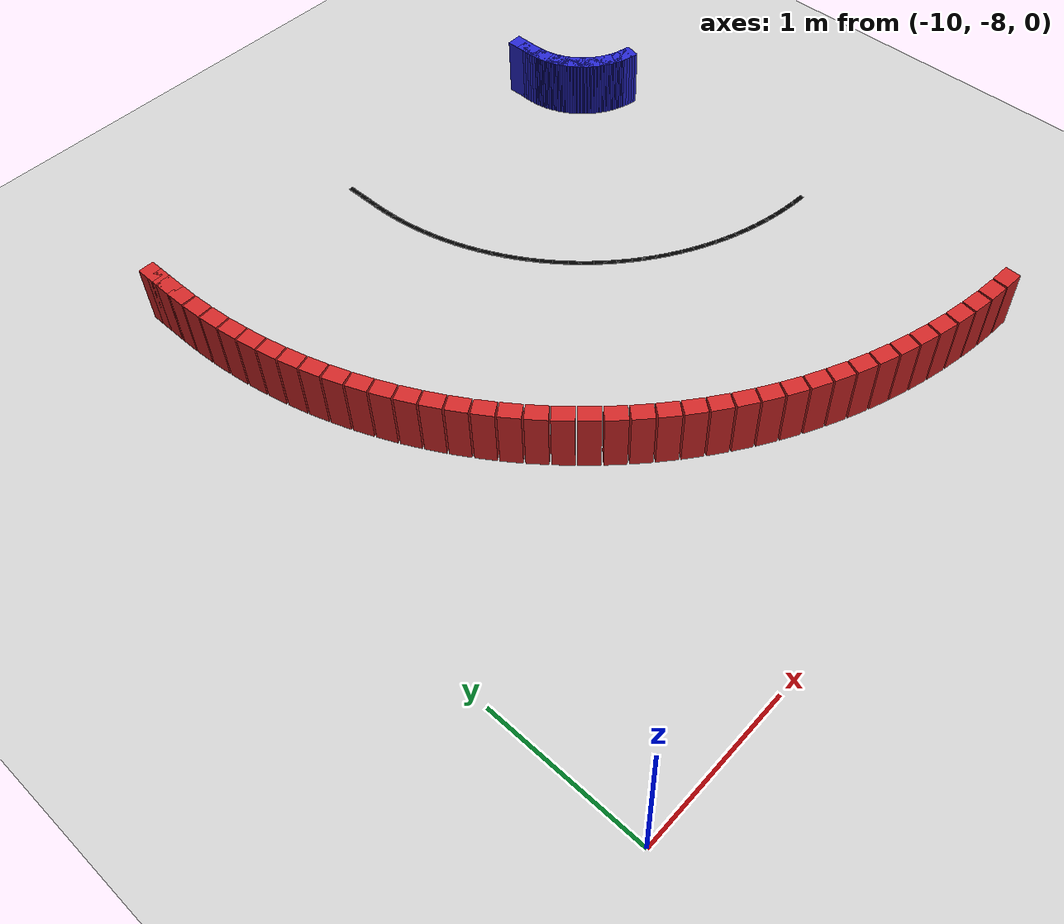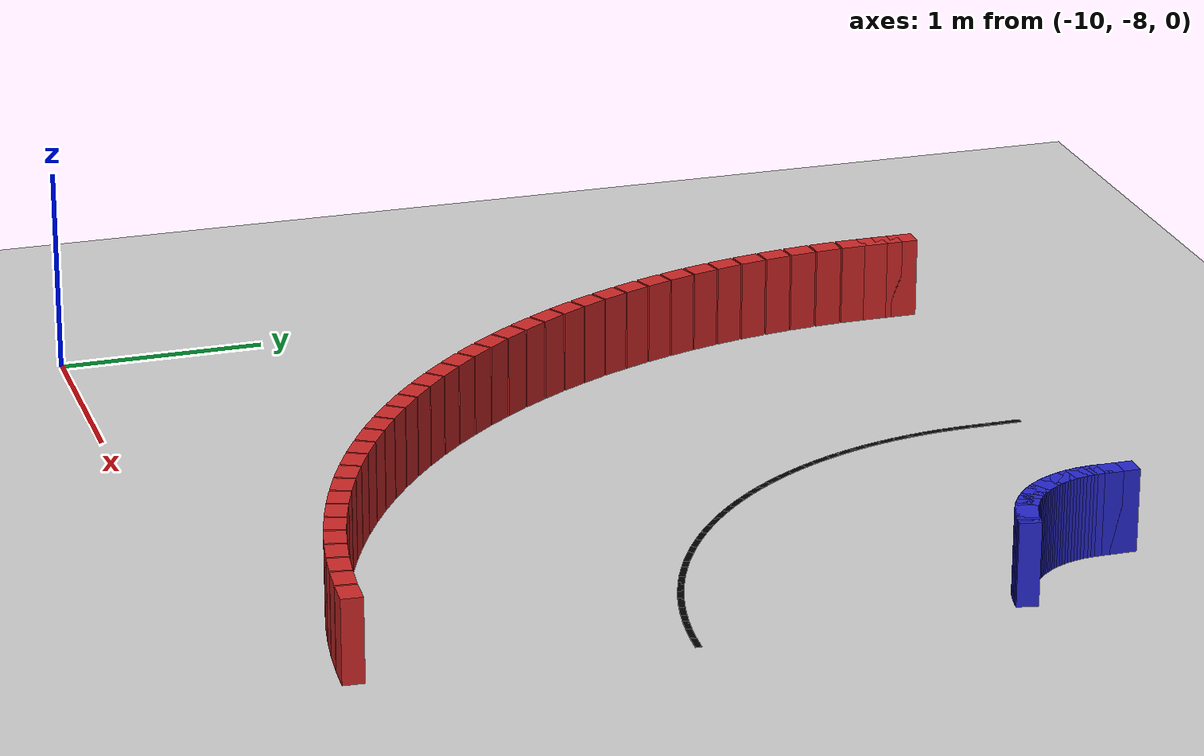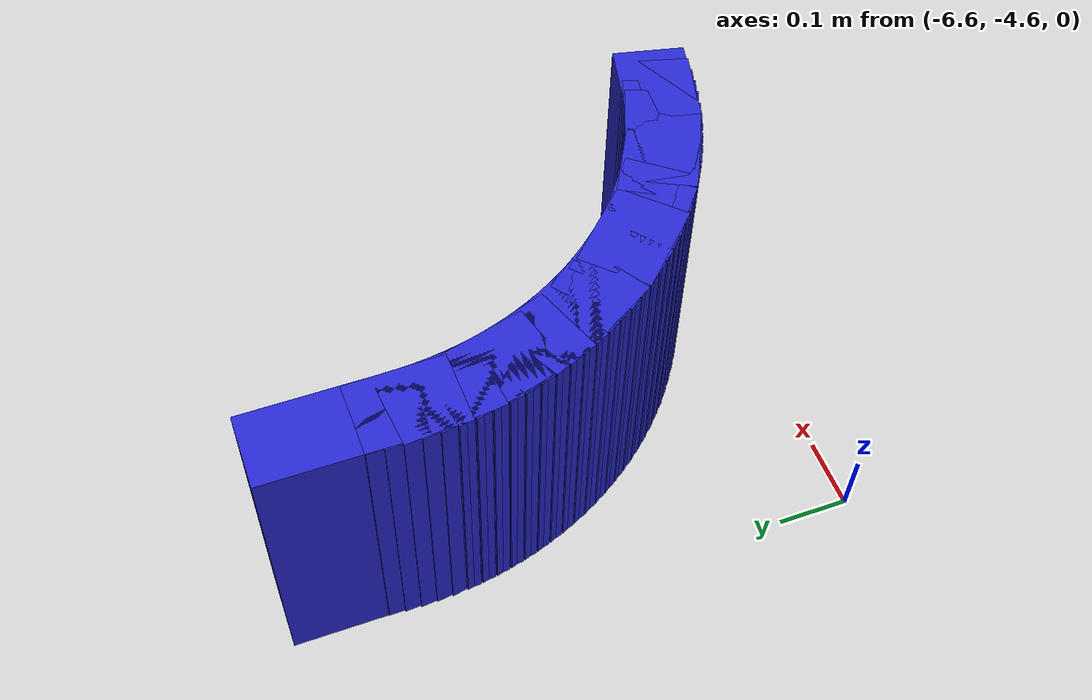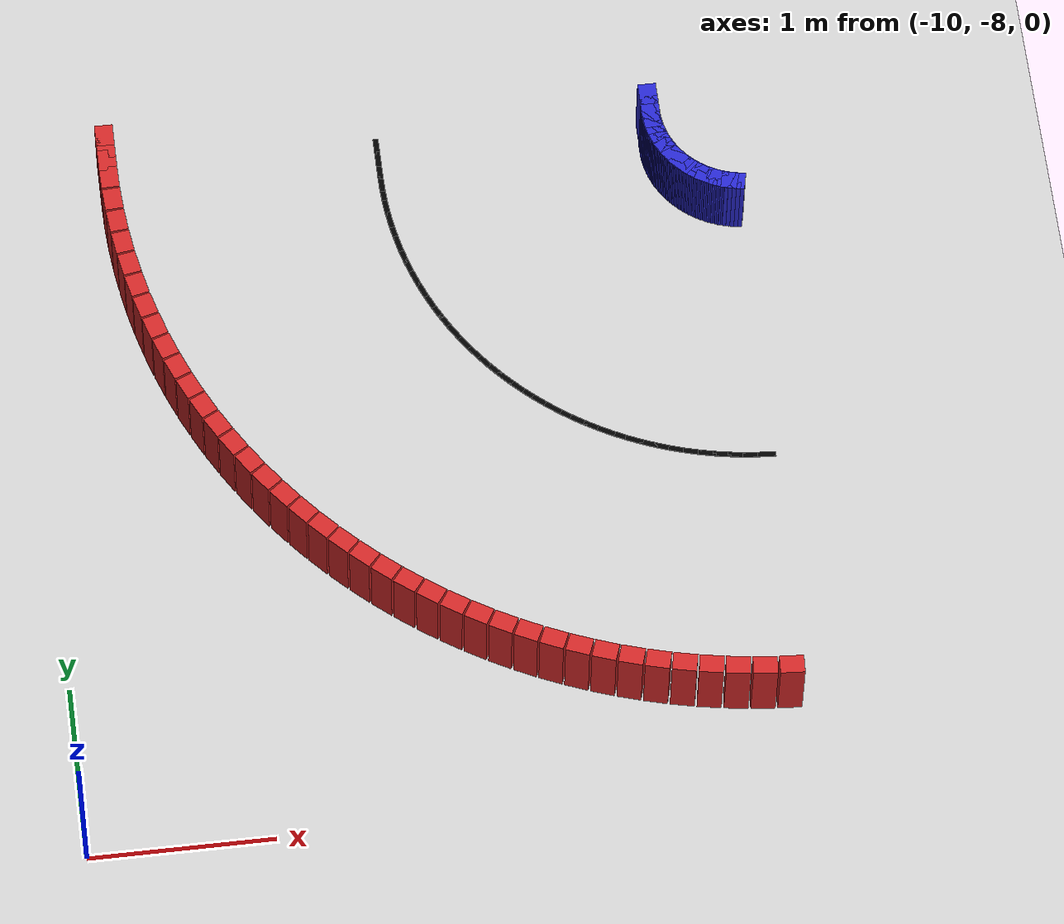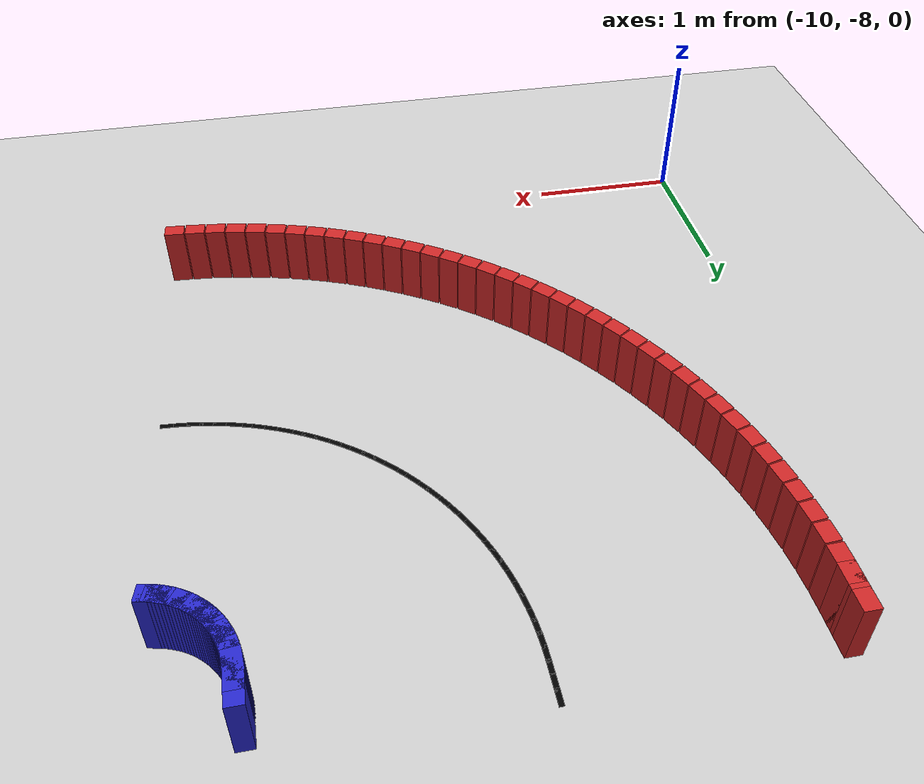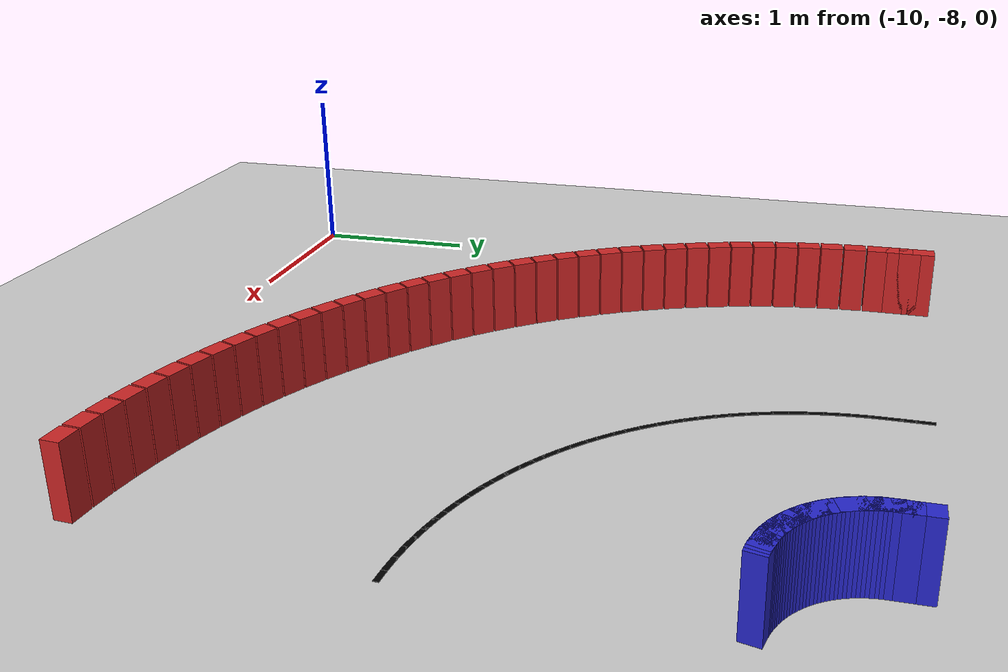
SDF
<sdf version="1.6">
 <world name="new_race_track">
  <include><uri>model://ground_plane</uri></include>
  <include><uri>model://sun</uri></include>
  <model name="iw_48">
   <static>true</static>
   <pose>-6.5000 -3.8800 0.200 0 0 -1.5708</pose>
   <link name="l">
    <collision name="c"><geometry><box><size>0.1300 0.1 0.4</size></box></geometry></collision>
    <visual name="v">
     <geometry><box><size>0.1300 0.1 0.4</size></box></geometry>
     <material><ambient>0.15 0.15 0.8 1</ambient><diffuse>0.15 0.15 0.8 1</diffuse></material>
    </visual>
   </link>
  </model>
  <model name="iw_49">
   <static>true</static>
   <pose>-6.5000 -3.9600 0.200 0 0 -1.5708</pose>
   <link name="l">
    <collision name="c"><geometry><box><size>0.1300 0.1 0.4</size></box></geometry></collision>
    <visual name="v">
     <geometry><box><size>0.1300 0.1 0.4</size></box></geometry>
     <material><ambient>0.15 0.15 0.8 1</ambient><diffuse>0.15 0.15 0.8 1</diffuse></material>
    </visual>
   </link>
  </model>
  <model name="iw_50">
   <static>true</static>
   <pose>-6.4995 -4.0101 0.200 0 0 -1.5507</pose>
   <link name="l">
    <collision name="c"><geometry><box><size>0.1305 0.1 0.4</size></box></geometry></collision>
    <visual name="v">
     <geometry><box><size>0.1305 0.1 0.4</size></box></geometry>
     <material><ambient>0.15 0.15 0.8 1</ambient><diffuse>0.15 0.15 0.8 1</diffuse></material>
    </visual>
   </link>
  </model>
  <model name="iw_51">
   <static>true</static>
   <pose>-6.4987 -4.0302 0.200 0 0 -1.5104</pose>
   <link name="l">
    <collision name="c"><geometry><box><size>0.1305 0.1 0.4</size></box></geometry></collision>
    <visual name="v">
     <geometry><box><size>0.1305 0.1 0.4</size></box></geometry>
     <material><ambient>0.15 0.15 0.8 1</ambient><diffuse>0.15 0.15 0.8 1</diffuse></material>
    </visual>
   </link>
  </model>
  <model name="iw_52">
   <static>true</static>
   <pose>-6.4971 -4.0502 0.200 0 0 -1.4701</pose>
   <link name="l">
    <collision name="c"><geometry><box><size>0.1305 0.1 0.4</size></box></geometry></collision>
    <visual name="v">
     <geometry><box><size>0.1305 0.1 0.4</size></box></geometry>
     <material><ambient>0.15 0.15 0.8 1</ambient><diffuse>0.15 0.15 0.8 1</diffuse></material>
    </visual>
   </link>
  </model>
  <model name="iw_53">
   <static>true</static>
   <pose>-6.4946 -4.0702 0.200 0 0 -1.4298</pose>
   <link name="l">
    <collision name="c"><geometry><box><size>0.1305 0.1 0.4</size></box></geometry></collision>
    <visual name="v">
     <geometry><box><size>0.1305 0.1 0.4</size></box></geometry>
     <material><ambient>0.15 0.15 0.8 1</ambient><diffuse>0.15 0.15 0.8 1</diffuse></material>
    </visual>
   </link>
  </model>
  <model name="iw_54">
   <static>true</static>
   <pose>-6.4914 -4.0901 0.200 0 0 -1.3896</pose>
   <link name="l">
    <collision name="c"><geometry><box><size>0.1305 0.1 0.4</size></box></geometry></collision>
    <visual name="v">
     <geometry><box><size>0.1305 0.1 0.4</size></box></geometry>
     <material><ambient>0.15 0.15 0.8 1</ambient><diffuse>0.15 0.15 0.8 1</diffuse></material>
    </visual>
   </link>
  </model>
  <model name="iw_55">
   <static>true</static>
   <pose>-6.4874 -4.1098 0.200 0 0 -1.3493</pose>
   <link name="l">
    <collision name="c"><geometry><box><size>0.1305 0.1 0.4</size></box></geometry></collision>
    <visual name="v">
     <geometry><box><size>0.1305 0.1 0.4</size></box></geometry>
     <material><ambient>0.15 0.15 0.8 1</ambient><diffuse>0.15 0.15 0.8 1</diffuse></material>
    </visual>
   </link>
  </model>
  <model name="iw_56">
   <static>true</static>
   <pose>-6.4826 -4.1293 0.200 0 0 -1.3090</pose>
   <link name="l">
    <collision name="c"><geometry><box><size>0.1305 0.1 0.4</size></box></geometry></collision>
    <visual name="v">
     <geometry><box><size>0.1305 0.1 0.4</size></box></geometry>
     <material><ambient>0.15 0.15 0.8 1</ambient><diffuse>0.15 0.15 0.8 1</diffuse></material>
    </visual>
   </link>
  </model>
  <model name="iw_57">
   <static>true</static>
   <pose>-6.4770 -4.1486 0.200 0 0 -1.2687</pose>
   <link name="l">
    <collision name="c"><geometry><box><size>0.1305 0.1 0.4</size></box></geometry></collision>
    <visual name="v">
     <geometry><box><size>0.1305 0.1 0.4</size></box></geometry>
     <material><ambient>0.15 0.15 0.8 1</ambient><diffuse>0.15 0.15 0.8 1</diffuse></material>
    </visual>
   </link>
  </model>
  <model name="iw_58">
   <static>true</static>
   <pose>-6.4706 -4.1677 0.200 0 0 -1.2284</pose>
   <link name="l">
    <collision name="c"><geometry><box><size>0.1305 0.1 0.4</size></box></geometry></collision>
    <visual name="v">
     <geometry><box><size>0.1305 0.1 0.4</size></box></geometry>
     <material><ambient>0.15 0.15 0.8 1</ambient><diffuse>0.15 0.15 0.8 1</diffuse></material>
    </visual>
   </link>
  </model>
  <model name="iw_59">
   <static>true</static>
   <pose>-6.4635 -4.1865 0.200 0 0 -1.1882</pose>
   <link name="l">
    <collision name="c"><geometry><box><size>0.1305 0.1 0.4</size></box></geometry></collision>
    <visual name="v">
     <geometry><box><size>0.1305 0.1 0.4</size></box></geometry>
     <material><ambient>0.15 0.15 0.8 1</ambient><diffuse>0.15 0.15 0.8 1</diffuse></material>
    </visual>
   </link>
  </model>
  <model name="iw_60">
   <static>true</static>
   <pose>-6.4556 -4.2050 0.200 0 0 -1.1479</pose>
   <link name="l">
    <collision name="c"><geometry><box><size>0.1305 0.1 0.4</size></box></geometry></collision>
    <visual name="v">
     <geometry><box><size>0.1305 0.1 0.4</size></box></geometry>
     <material><ambient>0.15 0.15 0.8 1</ambient><diffuse>0.15 0.15 0.8 1</diffuse></material>
    </visual>
   </link>
  </model>
  <model name="iw_61">
   <static>true</static>
   <pose>-6.4470 -4.2232 0.200 0 0 -1.1076</pose>
   <link name="l">
    <collision name="c"><geometry><box><size>0.1305 0.1 0.4</size></box></geometry></collision>
    <visual name="v">
     <geometry><box><size>0.1305 0.1 0.4</size></box></geometry>
     <material><ambient>0.15 0.15 0.8 1</ambient><diffuse>0.15 0.15 0.8 1</diffuse></material>
    </visual>
   </link>
  </model>
  <model name="iw_62">
   <static>true</static>
   <pose>-6.4376 -4.2410 0.200 0 0 -1.0673</pose>
   <link name="l">
    <collision name="c"><geometry><box><size>0.1305 0.1 0.4</size></box></geometry></collision>
    <visual name="v">
     <geometry><box><size>0.1305 0.1 0.4</size></box></geometry>
     <material><ambient>0.15 0.15 0.8 1</ambient><diffuse>0.15 0.15 0.8 1</diffuse></material>
    </visual>
   </link>
  </model>
  <model name="iw_63">
   <static>true</static>
   <pose>-6.4275 -4.2585 0.200 0 0 -1.0271</pose>
   <link name="l">
    <collision name="c"><geometry><box><size>0.1305 0.1 0.4</size></box></geometry></collision>
    <visual name="v">
     <geometry><box><size>0.1305 0.1 0.4</size></box></geometry>
     <material><ambient>0.15 0.15 0.8 1</ambient><diffuse>0.15 0.15 0.8 1</diffuse></material>
    </visual>
   </link>
  </model>
  <model name="iw_64">
   <static>true</static>
   <pose>-6.4168 -4.2755 0.200 0 0 -0.9868</pose>
   <link name="l">
    <collision name="c"><geometry><box><size>0.1305 0.1 0.4</size></box></geometry></collision>
    <visual name="v">
     <geometry><box><size>0.1305 0.1 0.4</size></box></geometry>
     <material><ambient>0.15 0.15 0.8 1</ambient><diffuse>0.15 0.15 0.8 1</diffuse></material>
    </visual>
   </link>
  </model>
  <model name="iw_65">
   <static>true</static>
   <pose>-6.4054 -4.2920 0.200 0 0 -0.9465</pose>
   <link name="l">
    <collision name="c"><geometry><box><size>0.1305 0.1 0.4</size></box></geometry></collision>
    <visual name="v">
     <geometry><box><size>0.1305 0.1 0.4</size></box></geometry>
     <material><ambient>0.15 0.15 0.8 1</ambient><diffuse>0.15 0.15 0.8 1</diffuse></material>
    </visual>
   </link>
  </model>
  <model name="iw_66">
   <static>true</static>
   <pose>-6.3933 -4.3081 0.200 0 0 -0.9062</pose>
   <link name="l">
    <collision name="c"><geometry><box><size>0.1305 0.1 0.4</size></box></geometry></collision>
    <visual name="v">
     <geometry><box><size>0.1305 0.1 0.4</size></box></geometry>
     <material><ambient>0.15 0.15 0.8 1</ambient><diffuse>0.15 0.15 0.8 1</diffuse></material>
    </visual>
   </link>
  </model>
  <model name="iw_67">
   <static>true</static>
   <pose>-6.3805 -4.3237 0.200 0 0 -0.8660</pose>
   <link name="l">
    <collision name="c"><geometry><box><size>0.1305 0.1 0.4</size></box></geometry></collision>
    <visual name="v">
     <geometry><box><size>0.1305 0.1 0.4</size></box></geometry>
     <material><ambient>0.15 0.15 0.8 1</ambient><diffuse>0.15 0.15 0.8 1</diffuse></material>
    </visual>
   </link>
  </model>
  <model name="iw_68">
   <static>true</static>
   <pose>-6.3672 -4.3388 0.200 0 0 -0.8257</pose>
   <link name="l">
    <collision name="c"><geometry><box><size>0.1305 0.1 0.4</size></box></geometry></collision>
    <visual name="v">
     <geometry><box><size>0.1305 0.1 0.4</size></box></geometry>
     <material><ambient>0.15 0.15 0.8 1</ambient><diffuse>0.15 0.15 0.8 1</diffuse></material>
    </visual>
   </link>
  </model>
  <model name="iw_69">
   <static>true</static>
   <pose>-6.3533 -4.3533 0.200 0 0 -0.7854</pose>
   <link name="l">
    <collision name="c"><geometry><box><size>0.1305 0.1 0.4</size></box></geometry></collision>
    <visual name="v">
     <geometry><box><size>0.1305 0.1 0.4</size></box></geometry>
     <material><ambient>0.15 0.15 0.8 1</ambient><diffuse>0.15 0.15 0.8 1</diffuse></material>
    </visual>
   </link>
  </model>
  <model name="iw_70">
   <static>true</static>
   <pose>-6.3388 -4.3672 0.200 0 0 -0.7451</pose>
   <link name="l">
    <collision name="c"><geometry><box><size>0.1305 0.1 0.4</size></box></geometry></collision>
    <visual name="v">
     <geometry><box><size>0.1305 0.1 0.4</size></box></geometry>
     <material><ambient>0.15 0.15 0.8 1</ambient><diffuse>0.15 0.15 0.8 1</diffuse></material>
    </visual>
   </link>
  </model>
  <model name="iw_71">
   <static>true</static>
   <pose>-6.3237 -4.3805 0.200 0 0 -0.7048</pose>
   <link name="l">
    <collision name="c"><geometry><box><size>0.1305 0.1 0.4</size></box></geometry></collision>
    <visual name="v">
     <geometry><box><size>0.1305 0.1 0.4</size></box></geometry>
     <material><ambient>0.15 0.15 0.8 1</ambient><diffuse>0.15 0.15 0.8 1</diffuse></material>
    </visual>
   </link>
  </model>
  <model name="iw_72">
   <static>true</static>
   <pose>-6.3081 -4.3933 0.200 0 0 -0.6646</pose>
   <link name="l">
    <collision name="c"><geometry><box><size>0.1305 0.1 0.4</size></box></geometry></collision>
    <visual name="v">
     <geometry><box><size>0.1305 0.1 0.4</size></box></geometry>
     <material><ambient>0.15 0.15 0.8 1</ambient><diffuse>0.15 0.15 0.8 1</diffuse></material>
    </visual>
   </link>
  </model>
  <model name="iw_73">
   <static>true</static>
   <pose>-6.2920 -4.4054 0.200 0 0 -0.6243</pose>
   <link name="l">
    <collision name="c"><geometry><box><size>0.1305 0.1 0.4</size></box></geometry></collision>
    <visual name="v">
     <geometry><box><size>0.1305 0.1 0.4</size></box></geometry>
     <material><ambient>0.15 0.15 0.8 1</ambient><diffuse>0.15 0.15 0.8 1</diffuse></material>
    </visual>
   </link>
  </model>
  <model name="iw_74">
   <static>true</static>
   <pose>-6.2755 -4.4168 0.200 0 0 -0.5840</pose>
   <link name="l">
    <collision name="c"><geometry><box><size>0.1305 0.1 0.4</size></box></geometry></collision>
    <visual name="v">
     <geometry><box><size>0.1305 0.1 0.4</size></box></geometry>
     <material><ambient>0.15 0.15 0.8 1</ambient><diffuse>0.15 0.15 0.8 1</diffuse></material>
    </visual>
   </link>
  </model>
  <model name="iw_75">
   <static>true</static>
   <pose>-6.2585 -4.4275 0.200 0 0 -0.5437</pose>
   <link name="l">
    <collision name="c"><geometry><box><size>0.1305 0.1 0.4</size></box></geometry></collision>
    <visual name="v">
     <geometry><box><size>0.1305 0.1 0.4</size></box></geometry>
     <material><ambient>0.15 0.15 0.8 1</ambient><diffuse>0.15 0.15 0.8 1</diffuse></material>
    </visual>
   </link>
  </model>
  <model name="iw_76">
   <static>true</static>
   <pose>-6.2410 -4.4376 0.200 0 0 -0.5035</pose>
   <link name="l">
    <collision name="c"><geometry><box><size>0.1305 0.1 0.4</size></box></geometry></collision>
    <visual name="v">
     <geometry><box><size>0.1305 0.1 0.4</size></box></geometry>
     <material><ambient>0.15 0.15 0.8 1</ambient><diffuse>0.15 0.15 0.8 1</diffuse></material>
    </visual>
   </link>
  </model>
  <model name="iw_77">
   <static>true</static>
   <pose>-6.2232 -4.4470 0.200 0 0 -0.4632</pose>
   <link name="l">
    <collision name="c"><geometry><box><size>0.1305 0.1 0.4</size></box></geometry></collision>
    <visual name="v">
     <geometry><box><size>0.1305 0.1 0.4</size></box></geometry>
     <material><ambient>0.15 0.15 0.8 1</ambient><diffuse>0.15 0.15 0.8 1</diffuse></material>
    </visual>
   </link>
  </model>
  <model name="iw_78">
   <static>true</static>
   <pose>-6.2050 -4.4556 0.200 0 0 -0.4229</pose>
   <link name="l">
    <collision name="c"><geometry><box><size>0.1305 0.1 0.4</size></box></geometry></collision>
    <visual name="v">
     <geometry><box><size>0.1305 0.1 0.4</size></box></geometry>
     <material><ambient>0.15 0.15 0.8 1</ambient><diffuse>0.15 0.15 0.8 1</diffuse></material>
    </visual>
   </link>
  </model>
  <model name="iw_79">
   <static>true</static>
   <pose>-6.1865 -4.4635 0.200 0 0 -0.3826</pose>
   <link name="l">
    <collision name="c"><geometry><box><size>0.1305 0.1 0.4</size></box></geometry></collision>
    <visual name="v">
     <geometry><box><size>0.1305 0.1 0.4</size></box></geometry>
     <material><ambient>0.15 0.15 0.8 1</ambient><diffuse>0.15 0.15 0.8 1</diffuse></material>
    </visual>
   </link>
  </model>
  <model name="iw_80">
   <static>true</static>
   <pose>-6.1677 -4.4706 0.200 0 0 -0.3424</pose>
   <link name="l">
    <collision name="c"><geometry><box><size>0.1305 0.1 0.4</size></box></geometry></collision>
    <visual name="v">
     <geometry><box><size>0.1305 0.1 0.4</size></box></geometry>
     <material><ambient>0.15 0.15 0.8 1</ambient><diffuse>0.15 0.15 0.8 1</diffuse></material>
    </visual>
   </link>
  </model>
  <model name="iw_81">
   <static>true</static>
   <pose>-6.1486 -4.4770 0.200 0 0 -0.3021</pose>
   <link name="l">
    <collision name="c"><geometry><box><size>0.1305 0.1 0.4</size></box></geometry></collision>
    <visual name="v">
     <geometry><box><size>0.1305 0.1 0.4</size></box></geometry>
     <material><ambient>0.15 0.15 0.8 1</ambient><diffuse>0.15 0.15 0.8 1</diffuse></material>
    </visual>
   </link>
  </model>
  <model name="iw_82">
   <static>true</static>
   <pose>-6.1293 -4.4826 0.200 0 0 -0.2618</pose>
   <link name="l">
    <collision name="c"><geometry><box><size>0.1305 0.1 0.4</size></box></geometry></collision>
    <visual name="v">
     <geometry><box><size>0.1305 0.1 0.4</size></box></geometry>
     <material><ambient>0.15 0.15 0.8 1</ambient><diffuse>0.15 0.15 0.8 1</diffuse></material>
    </visual>
   </link>
  </model>
  <model name="iw_83">
   <static>true</static>
   <pose>-6.1098 -4.4874 0.200 0 0 -0.2215</pose>
   <link name="l">
    <collision name="c"><geometry><box><size>0.1305 0.1 0.4</size></box></geometry></collision>
    <visual name="v">
     <geometry><box><size>0.1305 0.1 0.4</size></box></geometry>
     <material><ambient>0.15 0.15 0.8 1</ambient><diffuse>0.15 0.15 0.8 1</diffuse></material>
    </visual>
   </link>
  </model>
  <model name="ow_47">
   <static>true</static>
   <pose>-9.5000 -3.8000 0.200 0 0 -1.5708</pose>
   <link name="l">
    <collision name="c"><geometry><box><size>0.1300 0.1 0.4</size></box></geometry></collision>
    <visual name="v">
     <geometry><box><size>0.1300 0.1 0.4</size></box></geometry>
     <material><ambient>0.8 0.15 0.15 1</ambient><diffuse>0.8 0.15 0.15 1</diffuse></material>
    </visual>
   </link>
  </model>
  <model name="ow_48">
   <static>true</static>
   <pose>-9.5000 -3.8800 0.200 0 0 -1.5708</pose>
   <link name="l">
    <collision name="c"><geometry><box><size>0.1300 0.1 0.4</size></box></geometry></collision>
    <visual name="v">
     <geometry><box><size>0.1300 0.1 0.4</size></box></geometry>
     <material><ambient>0.8 0.15 0.15 1</ambient><diffuse>0.8 0.15 0.15 1</diffuse></material>
    </visual>
   </link>
  </model>
  <model name="ow_49">
   <static>true</static>
   <pose>-9.5000 -3.9600 0.200 0 0 -1.5708</pose>
   <link name="l">
    <collision name="c"><geometry><box><size>0.1300 0.1 0.4</size></box></geometry></collision>
    <visual name="v">
     <geometry><box><size>0.1300 0.1 0.4</size></box></geometry>
     <material><ambient>0.8 0.15 0.15 1</ambient><diffuse>0.8 0.15 0.15 1</diffuse></material>
    </visual>
   </link>
  </model>
  <model name="ow_50">
   <static>true</static>
   <pose>-9.4989 -4.0705 0.200 0 0 -1.5507</pose>
   <link name="l">
    <collision name="c"><geometry><box><size>0.1305 0.1 0.4</size></box></geometry></collision>
    <visual name="v">
     <geometry><box><size>0.1305 0.1 0.4</size></box></geometry>
     <material><ambient>0.8 0.15 0.15 1</ambient><diffuse>0.8 0.15 0.15 1</diffuse></material>
    </visual>
   </link>
  </model>
  <model name="ow_51">
   <static>true</static>
   <pose>-9.4932 -4.2113 0.200 0 0 -1.5104</pose>
   <link name="l">
    <collision name="c"><geometry><box><size>0.1305 0.1 0.4</size></box></geometry></collision>
    <visual name="v">
     <geometry><box><size>0.1305 0.1 0.4</size></box></geometry>
     <material><ambient>0.8 0.15 0.15 1</ambient><diffuse>0.8 0.15 0.15 1</diffuse></material>
    </visual>
   </link>
  </model>
  <model name="ow_52">
   <static>true</static>
   <pose>-9.4819 -4.3518 0.200 0 0 -1.4701</pose>
   <link name="l">
    <collision name="c"><geometry><box><size>0.1305 0.1 0.4</size></box></geometry></collision>
    <visual name="v">
     <geometry><box><size>0.1305 0.1 0.4</size></box></geometry>
     <material><ambient>0.8 0.15 0.15 1</ambient><diffuse>0.8 0.15 0.15 1</diffuse></material>
    </visual>
   </link>
  </model>
  <model name="ow_53">
   <static>true</static>
   <pose>-9.4649 -4.4917 0.200 0 0 -1.4298</pose>
   <link name="l">
    <collision name="c"><geometry><box><size>0.1305 0.1 0.4</size></box></geometry></collision>
    <visual name="v">
     <geometry><box><size>0.1305 0.1 0.4</size></box></geometry>
     <material><ambient>0.8 0.15 0.15 1</ambient><diffuse>0.8 0.15 0.15 1</diffuse></material>
    </visual>
   </link>
  </model>
  <model name="ow_54">
   <static>true</static>
   <pose>-9.4423 -4.6308 0.200 0 0 -1.3896</pose>
   <link name="l">
    <collision name="c"><geometry><box><size>0.1305 0.1 0.4</size></box></geometry></collision>
    <visual name="v">
     <geometry><box><size>0.1305 0.1 0.4</size></box></geometry>
     <material><ambient>0.8 0.15 0.15 1</ambient><diffuse>0.8 0.15 0.15 1</diffuse></material>
    </visual>
   </link>
  </model>
  <model name="ow_55">
   <static>true</static>
   <pose>-9.4141 -4.7689 0.200 0 0 -1.3493</pose>
   <link name="l">
    <collision name="c"><geometry><box><size>0.1305 0.1 0.4</size></box></geometry></collision>
    <visual name="v">
     <geometry><box><size>0.1305 0.1 0.4</size></box></geometry>
     <material><ambient>0.8 0.15 0.15 1</ambient><diffuse>0.8 0.15 0.15 1</diffuse></material>
    </visual>
   </link>
  </model>
  <model name="ow_56">
   <static>true</static>
   <pose>-9.3803 -4.9058 0.200 0 0 -1.3090</pose>
   <link name="l">
    <collision name="c"><geometry><box><size>0.1305 0.1 0.4</size></box></geometry></collision>
    <visual name="v">
     <geometry><box><size>0.1305 0.1 0.4</size></box></geometry>
     <material><ambient>0.8 0.15 0.15 1</ambient><diffuse>0.8 0.15 0.15 1</diffuse></material>
    </visual>
   </link>
  </model>
  <model name="ow_57">
   <static>true</static>
   <pose>-9.3411 -5.0411 0.200 0 0 -1.2687</pose>
   <link name="l">
    <collision name="c"><geometry><box><size>0.1305 0.1 0.4</size></box></geometry></collision>
    <visual name="v">
     <geometry><box><size>0.1305 0.1 0.4</size></box></geometry>
     <material><ambient>0.8 0.15 0.15 1</ambient><diffuse>0.8 0.15 0.15 1</diffuse></material>
    </visual>
   </link>
  </model>
  <model name="ow_58">
   <static>true</static>
   <pose>-9.2965 -5.1748 0.200 0 0 -1.2284</pose>
   <link name="l">
    <collision name="c"><geometry><box><size>0.1305 0.1 0.4</size></box></geometry></collision>
    <visual name="v">
     <geometry><box><size>0.1305 0.1 0.4</size></box></geometry>
     <material><ambient>0.8 0.15 0.15 1</ambient><diffuse>0.8 0.15 0.15 1</diffuse></material>
    </visual>
   </link>
  </model>
  <model name="ow_59">
   <static>true</static>
   <pose>-9.2465 -5.3066 0.200 0 0 -1.1882</pose>
   <link name="l">
    <collision name="c"><geometry><box><size>0.1305 0.1 0.4</size></box></geometry></collision>
    <visual name="v">
     <geometry><box><size>0.1305 0.1 0.4</size></box></geometry>
     <material><ambient>0.8 0.15 0.15 1</ambient><diffuse>0.8 0.15 0.15 1</diffuse></material>
    </visual>
   </link>
  </model>
  <model name="ow_60">
   <static>true</static>
   <pose>-9.1913 -5.4363 0.200 0 0 -1.1479</pose>
   <link name="l">
    <collision name="c"><geometry><box><size>0.1305 0.1 0.4</size></box></geometry></collision>
    <visual name="v">
     <geometry><box><size>0.1305 0.1 0.4</size></box></geometry>
     <material><ambient>0.8 0.15 0.15 1</ambient><diffuse>0.8 0.15 0.15 1</diffuse></material>
    </visual>
   </link>
  </model>
  <model name="ow_61">
   <static>true</static>
   <pose>-9.1309 -5.5636 0.200 0 0 -1.1076</pose>
   <link name="l">
    <collision name="c"><geometry><box><size>0.1305 0.1 0.4</size></box></geometry></collision>
    <visual name="v">
     <geometry><box><size>0.1305 0.1 0.4</size></box></geometry>
     <material><ambient>0.8 0.15 0.15 1</ambient><diffuse>0.8 0.15 0.15 1</diffuse></material>
    </visual>
   </link>
  </model>
  <model name="ow_62">
   <static>true</static>
   <pose>-9.0654 -5.6884 0.200 0 0 -1.0673</pose>
   <link name="l">
    <collision name="c"><geometry><box><size>0.1305 0.1 0.4</size></box></geometry></collision>
    <visual name="v">
     <geometry><box><size>0.1305 0.1 0.4</size></box></geometry>
     <material><ambient>0.8 0.15 0.15 1</ambient><diffuse>0.8 0.15 0.15 1</diffuse></material>
    </visual>
   </link>
  </model>
  <model name="ow_63">
   <static>true</static>
   <pose>-8.9949 -5.8105 0.200 0 0 -1.0271</pose>
   <link name="l">
    <collision name="c"><geometry><box><size>0.1305 0.1 0.4</size></box></geometry></collision>
    <visual name="v">
     <geometry><box><size>0.1305 0.1 0.4</size></box></geometry>
     <material><ambient>0.8 0.15 0.15 1</ambient><diffuse>0.8 0.15 0.15 1</diffuse></material>
    </visual>
   </link>
  </model>
  <model name="ow_64">
   <static>true</static>
   <pose>-8.9196 -5.9296 0.200 0 0 -0.9868</pose>
   <link name="l">
    <collision name="c"><geometry><box><size>0.1305 0.1 0.4</size></box></geometry></collision>
    <visual name="v">
     <geometry><box><size>0.1305 0.1 0.4</size></box></geometry>
     <material><ambient>0.8 0.15 0.15 1</ambient><diffuse>0.8 0.15 0.15 1</diffuse></material>
    </visual>
   </link>
  </model>
  <model name="ow_65">
   <static>true</static>
   <pose>-8.8395 -6.0456 0.200 0 0 -0.9465</pose>
   <link name="l">
    <collision name="c"><geometry><box><size>0.1305 0.1 0.4</size></box></geometry></collision>
    <visual name="v">
     <geometry><box><size>0.1305 0.1 0.4</size></box></geometry>
     <material><ambient>0.8 0.15 0.15 1</ambient><diffuse>0.8 0.15 0.15 1</diffuse></material>
    </visual>
   </link>
  </model>
  <model name="ow_66">
   <static>true</static>
   <pose>-8.7548 -6.1583 0.200 0 0 -0.9062</pose>
   <link name="l">
    <collision name="c"><geometry><box><size>0.1305 0.1 0.4</size></box></geometry></collision>
    <visual name="v">
     <geometry><box><size>0.1305 0.1 0.4</size></box></geometry>
     <material><ambient>0.8 0.15 0.15 1</ambient><diffuse>0.8 0.15 0.15 1</diffuse></material>
    </visual>
   </link>
  </model>
  <model name="ow_67">
   <static>true</static>
   <pose>-8.6657 -6.2674 0.200 0 0 -0.8660</pose>
   <link name="l">
    <collision name="c"><geometry><box><size>0.1305 0.1 0.4</size></box></geometry></collision>
    <visual name="v">
     <geometry><box><size>0.1305 0.1 0.4</size></box></geometry>
     <material><ambient>0.8 0.15 0.15 1</ambient><diffuse>0.8 0.15 0.15 1</diffuse></material>
    </visual>
   </link>
  </model>
  <model name="ow_68">
   <static>true</static>
   <pose>-8.5722 -6.3729 0.200 0 0 -0.8257</pose>
   <link name="l">
    <collision name="c"><geometry><box><size>0.1305 0.1 0.4</size></box></geometry></collision>
    <visual name="v">
     <geometry><box><size>0.1305 0.1 0.4</size></box></geometry>
     <material><ambient>0.8 0.15 0.15 1</ambient><diffuse>0.8 0.15 0.15 1</diffuse></material>
    </visual>
   </link>
  </model>
  <model name="ow_69">
   <static>true</static>
   <pose>-8.4746 -6.4746 0.200 0 0 -0.7854</pose>
   <link name="l">
    <collision name="c"><geometry><box><size>0.1305 0.1 0.4</size></box></geometry></collision>
    <visual name="v">
     <geometry><box><size>0.1305 0.1 0.4</size></box></geometry>
     <material><ambient>0.8 0.15 0.15 1</ambient><diffuse>0.8 0.15 0.15 1</diffuse></material>
    </visual>
   </link>
  </model>
  <model name="ow_70">
   <static>true</static>
   <pose>-8.3729 -6.5722 0.200 0 0 -0.7451</pose>
   <link name="l">
    <collision name="c"><geometry><box><size>0.1305 0.1 0.4</size></box></geometry></collision>
    <visual name="v">
     <geometry><box><size>0.1305 0.1 0.4</size></box></geometry>
     <material><ambient>0.8 0.15 0.15 1</ambient><diffuse>0.8 0.15 0.15 1</diffuse></material>
    </visual>
   </link>
  </model>
  <model name="ow_71">
   <static>true</static>
   <pose>-8.2674 -6.6657 0.200 0 0 -0.7048</pose>
   <link name="l">
    <collision name="c"><geometry><box><size>0.1305 0.1 0.4</size></box></geometry></collision>
    <visual name="v">
     <geometry><box><size>0.1305 0.1 0.4</size></box></geometry>
     <material><ambient>0.8 0.15 0.15 1</ambient><diffuse>0.8 0.15 0.15 1</diffuse></material>
    </visual>
   </link>
  </model>
  <model name="ow_72">
   <static>true</static>
   <pose>-8.1583 -6.7548 0.200 0 0 -0.6646</pose>
   <link name="l">
    <collision name="c"><geometry><box><size>0.1305 0.1 0.4</size></box></geometry></collision>
    <visual name="v">
     <geometry><box><size>0.1305 0.1 0.4</size></box></geometry>
     <material><ambient>0.8 0.15 0.15 1</ambient><diffuse>0.8 0.15 0.15 1</diffuse></material>
    </visual>
   </link>
  </model>
  <model name="ow_73">
   <static>true</static>
   <pose>-8.0456 -6.8395 0.200 0 0 -0.6243</pose>
   <link name="l">
    <collision name="c"><geometry><box><size>0.1305 0.1 0.4</size></box></geometry></collision>
    <visual name="v">
     <geometry><box><size>0.1305 0.1 0.4</size></box></geometry>
     <material><ambient>0.8 0.15 0.15 1</ambient><diffuse>0.8 0.15 0.15 1</diffuse></material>
    </visual>
   </link>
  </model>
  <model name="ow_74">
   <static>true</static>
   <pose>-7.9296 -6.9196 0.200 0 0 -0.5840</pose>
   <link name="l">
    <collision name="c"><geometry><box><size>0.1305 0.1 0.4</size></box></geometry></collision>
    <visual name="v">
     <geometry><box><size>0.1305 0.1 0.4</size></box></geometry>
     <material><ambient>0.8 0.15 0.15 1</ambient><diffuse>0.8 0.15 0.15 1</diffuse></material>
    </visual>
   </link>
  </model>
  <model name="ow_75">
   <static>true</static>
   <pose>-7.8105 -6.9949 0.200 0 0 -0.5437</pose>
   <link name="l">
    <collision name="c"><geometry><box><size>0.1305 0.1 0.4</size></box></geometry></collision>
    <visual name="v">
     <geometry><box><size>0.1305 0.1 0.4</size></box></geometry>
     <material><ambient>0.8 0.15 0.15 1</ambient><diffuse>0.8 0.15 0.15 1</diffuse></material>
    </visual>
   </link>
  </model>
  <model name="ow_76">
   <static>true</static>
   <pose>-7.6884 -7.0654 0.200 0 0 -0.5035</pose>
   <link name="l">
    <collision name="c"><geometry><box><size>0.1305 0.1 0.4</size></box></geometry></collision>
    <visual name="v">
     <geometry><box><size>0.1305 0.1 0.4</size></box></geometry>
     <material><ambient>0.8 0.15 0.15 1</ambient><diffuse>0.8 0.15 0.15 1</diffuse></material>
    </visual>
   </link>
  </model>
  <model name="ow_77">
   <static>true</static>
   <pose>-7.5636 -7.1309 0.200 0 0 -0.4632</pose>
   <link name="l">
    <collision name="c"><geometry><box><size>0.1305 0.1 0.4</size></box></geometry></collision>
    <visual name="v">
     <geometry><box><size>0.1305 0.1 0.4</size></box></geometry>
     <material><ambient>0.8 0.15 0.15 1</ambient><diffuse>0.8 0.15 0.15 1</diffuse></material>
    </visual>
   </link>
  </model>
  <model name="ow_78">
   <static>true</static>
   <pose>-7.4363 -7.1913 0.200 0 0 -0.4229</pose>
   <link name="l">
    <collision name="c"><geometry><box><size>0.1305 0.1 0.4</size></box></geometry></collision>
    <visual name="v">
     <geometry><box><size>0.1305 0.1 0.4</size></box></geometry>
     <material><ambient>0.8 0.15 0.15 1</ambient><diffuse>0.8 0.15 0.15 1</diffuse></material>
    </visual>
   </link>
  </model>
  <model name="ow_79">
   <static>true</static>
   <pose>-7.3066 -7.2465 0.200 0 0 -0.3826</pose>
   <link name="l">
    <collision name="c"><geometry><box><size>0.1305 0.1 0.4</size></box></geometry></collision>
    <visual name="v">
     <geometry><box><size>0.1305 0.1 0.4</size></box></geometry>
     <material><ambient>0.8 0.15 0.15 1</ambient><diffuse>0.8 0.15 0.15 1</diffuse></material>
    </visual>
   </link>
  </model>
  <model name="ow_80">
   <static>true</static>
   <pose>-7.1748 -7.2965 0.200 0 0 -0.3424</pose>
   <link name="l">
    <collision name="c"><geometry><box><size>0.1305 0.1 0.4</size></box></geometry></collision>
    <visual name="v">
     <geometry><box><size>0.1305 0.1 0.4</size></box></geometry>
     <material><ambient>0.8 0.15 0.15 1</ambient><diffuse>0.8 0.15 0.15 1</diffuse></material>
    </visual>
   </link>
  </model>
  <model name="ow_81">
   <static>true</static>
   <pose>-7.0411 -7.3411 0.200 0 0 -0.3021</pose>
   <link name="l">
    <collision name="c"><geometry><box><size>0.1305 0.1 0.4</size></box></geometry></collision>
    <visual name="v">
     <geometry><box><size>0.1305 0.1 0.4</size></box></geometry>
     <material><ambient>0.8 0.15 0.15 1</ambient><diffuse>0.8 0.15 0.15 1</diffuse></material>
    </visual>
   </link>
  </model>
  <model name="ow_82">
   <static>true</static>
   <pose>-6.9058 -7.3803 0.200 0 0 -0.2618</pose>
   <link name="l">
    <collision name="c"><geometry><box><size>0.1305 0.1 0.4</size></box></geometry></collision>
    <visual name="v">
     <geometry><box><size>0.1305 0.1 0.4</size></box></geometry>
     <material><ambient>0.8 0.15 0.15 1</ambient><diffuse>0.8 0.15 0.15 1</diffuse></material>
    </visual>
   </link>
  </model>
  <model name="ow_83">
   <static>true</static>
   <pose>-6.7689 -7.4141 0.200 0 0 -0.2215</pose>
   <link name="l">
    <collision name="c"><geometry><box><size>0.1305 0.1 0.4</size></box></geometry></collision>
    <visual name="v">
     <geometry><box><size>0.1305 0.1 0.4</size></box></geometry>
     <material><ambient>0.8 0.15 0.15 1</ambient><diffuse>0.8 0.15 0.15 1</diffuse></material>
    </visual>
   </link>
  </model>
  <model name="ow_84">
   <static>true</static>
   <pose>-6.6308 -7.4423 0.200 0 0 -0.1812</pose>
   <link name="l">
    <collision name="c"><geometry><box><size>0.1305 0.1 0.4</size></box></geometry></collision>
    <visual name="v">
     <geometry><box><size>0.1305 0.1 0.4</size></box></geometry>
     <material><ambient>0.8 0.15 0.15 1</ambient><diffuse>0.8 0.15 0.15 1</diffuse></material>
    </visual>
   </link>
  </model>
  <model name="ow_85">
   <static>true</static>
   <pose>-6.4917 -7.4649 0.200 0 0 -0.1410</pose>
   <link name="l">
    <collision name="c"><geometry><box><size>0.1305 0.1 0.4</size></box></geometry></collision>
    <visual name="v">
     <geometry><box><size>0.1305 0.1 0.4</size></box></geometry>
     <material><ambient>0.8 0.15 0.15 1</ambient><diffuse>0.8 0.15 0.15 1</diffuse></material>
    </visual>
   </link>
  </model>
  <model name="ow_86">
   <static>true</static>
   <pose>-6.3518 -7.4819 0.200 0 0 -0.1007</pose>
   <link name="l">
    <collision name="c"><geometry><box><size>0.1305 0.1 0.4</size></box></geometry></collision>
    <visual name="v">
     <geometry><box><size>0.1305 0.1 0.4</size></box></geometry>
     <material><ambient>0.8 0.15 0.15 1</ambient><diffuse>0.8 0.15 0.15 1</diffuse></material>
    </visual>
   </link>
  </model>
  <model name="ow_87">
   <static>true</static>
   <pose>-6.2113 -7.4932 0.200 0 0 -0.0604</pose>
   <link name="l">
    <collision name="c"><geometry><box><size>0.1305 0.1 0.4</size></box></geometry></collision>
    <visual name="v">
     <geometry><box><size>0.1305 0.1 0.4</size></box></geometry>
     <material><ambient>0.8 0.15 0.15 1</ambient><diffuse>0.8 0.15 0.15 1</diffuse></material>
    </visual>
   </link>
  </model>
  <model name="line_47">
   <static>true</static>
   <pose>-8.0000 -3.8000 0.002 0 0 -1.5708</pose>
   <link name="l">
    <visual name="v">
     <geometry><box><size>0.1000 0.03 0.002</size></box></geometry>
     <material><ambient>0 0 0 1</ambient><diffuse>0 0 0 1</diffuse></material>
    </visual>
   </link>
  </model>
  <model name="line_48">
   <static>true</static>
   <pose>-8.0000 -3.8800 0.002 0 0 -1.5708</pose>
   <link name="l">
    <visual name="v">
     <geometry><box><size>0.1000 0.03 0.002</size></box></geometry>
     <material><ambient>0 0 0 1</ambient><diffuse>0 0 0 1</diffuse></material>
    </visual>
   </link>
  </model>
  <model name="line_49">
   <static>true</static>
   <pose>-8.0000 -3.9600 0.002 0 0 -1.5708</pose>
   <link name="l">
    <visual name="v">
     <geometry><box><size>0.1000 0.03 0.002</size></box></geometry>
     <material><ambient>0 0 0 1</ambient><diffuse>0 0 0 1</diffuse></material>
    </visual>
   </link>
  </model>
  <model name="line_50">
   <static>true</static>
   <pose>-7.9992 -4.0403 0.002 0 0 -1.5507</pose>
   <link name="l">
    <visual name="v">
     <geometry><box><size>0.1005 0.03 0.002</size></box></geometry>
     <material><ambient>0 0 0 1</ambient><diffuse>0 0 0 1</diffuse></material>
    </visual>
   </link>
  </model>
  <model name="line_51">
   <static>true</static>
   <pose>-7.9959 -4.1207 0.002 0 0 -1.5104</pose>
   <link name="l">
    <visual name="v">
     <geometry><box><size>0.1005 0.03 0.002</size></box></geometry>
     <material><ambient>0 0 0 1</ambient><diffuse>0 0 0 1</diffuse></material>
    </visual>
   </link>
  </model>
  <model name="line_52">
   <static>true</static>
   <pose>-7.9895 -4.2010 0.002 0 0 -1.4701</pose>
   <link name="l">
    <visual name="v">
     <geometry><box><size>0.1005 0.03 0.002</size></box></geometry>
     <material><ambient>0 0 0 1</ambient><diffuse>0 0 0 1</diffuse></material>
    </visual>
   </link>
  </model>
  <model name="line_53">
   <static>true</static>
   <pose>-7.9798 -4.2809 0.002 0 0 -1.4298</pose>
   <link name="l">
    <visual name="v">
     <geometry><box><size>0.1005 0.03 0.002</size></box></geometry>
     <material><ambient>0 0 0 1</ambient><diffuse>0 0 0 1</diffuse></material>
    </visual>
   </link>
  </model>
  <model name="line_54">
   <static>true</static>
   <pose>-7.9668 -4.3604 0.002 0 0 -1.3896</pose>
   <link name="l">
    <visual name="v">
     <geometry><box><size>0.1005 0.03 0.002</size></box></geometry>
     <material><ambient>0 0 0 1</ambient><diffuse>0 0 0 1</diffuse></material>
    </visual>
   </link>
  </model>
  <model name="line_55">
   <static>true</static>
   <pose>-7.9507 -4.4393 0.002 0 0 -1.3493</pose>
   <link name="l">
    <visual name="v">
     <geometry><box><size>0.1005 0.03 0.002</size></box></geometry>
     <material><ambient>0 0 0 1</ambient><diffuse>0 0 0 1</diffuse></material>
    </visual>
   </link>
  </model>
  <model name="line_56">
   <static>true</static>
   <pose>-7.9315 -4.5175 0.002 0 0 -1.3090</pose>
   <link name="l">
    <visual name="v">
     <geometry><box><size>0.1005 0.03 0.002</size></box></geometry>
     <material><ambient>0 0 0 1</ambient><diffuse>0 0 0 1</diffuse></material>
    </visual>
   </link>
  </model>
  <model name="line_57">
   <static>true</static>
   <pose>-7.9091 -4.5949 0.002 0 0 -1.2687</pose>
   <link name="l">
    <visual name="v">
     <geometry><box><size>0.1005 0.03 0.002</size></box></geometry>
     <material><ambient>0 0 0 1</ambient><diffuse>0 0 0 1</diffuse></material>
    </visual>
   </link>
  </model>
  <model name="line_58">
   <static>true</static>
   <pose>-7.8836 -4.6713 0.002 0 0 -1.2284</pose>
   <link name="l">
    <visual name="v">
     <geometry><box><size>0.1005 0.03 0.002</size></box></geometry>
     <material><ambient>0 0 0 1</ambient><diffuse>0 0 0 1</diffuse></material>
    </visual>
   </link>
  </model>
  <model name="line_59">
   <static>true</static>
   <pose>-7.8550 -4.7466 0.002 0 0 -1.1882</pose>
   <link name="l">
    <visual name="v">
     <geometry><box><size>0.1005 0.03 0.002</size></box></geometry>
     <material><ambient>0 0 0 1</ambient><diffuse>0 0 0 1</diffuse></material>
    </visual>
   </link>
  </model>
  <model name="line_60">
   <static>true</static>
   <pose>-7.8234 -4.8207 0.002 0 0 -1.1479</pose>
   <link name="l">
    <visual name="v">
     <geometry><box><size>0.1005 0.03 0.002</size></box></geometry>
     <material><ambient>0 0 0 1</ambient><diffuse>0 0 0 1</diffuse></material>
    </visual>
   </link>
  </model>
  <model name="line_61">
   <static>true</static>
   <pose>-7.7889 -4.8934 0.002 0 0 -1.1076</pose>
   <link name="l">
    <visual name="v">
     <geometry><box><size>0.1005 0.03 0.002</size></box></geometry>
     <material><ambient>0 0 0 1</ambient><diffuse>0 0 0 1</diffuse></material>
    </visual>
   </link>
  </model>
  <model name="line_62">
   <static>true</static>
   <pose>-7.7515 -4.9647 0.002 0 0 -1.0673</pose>
   <link name="l">
    <visual name="v">
     <geometry><box><size>0.1005 0.03 0.002</size></box></geometry>
     <material><ambient>0 0 0 1</ambient><diffuse>0 0 0 1</diffuse></material>
    </visual>
   </link>
  </model>
  <model name="line_63">
   <static>true</static>
   <pose>-7.7112 -5.0345 0.002 0 0 -1.0271</pose>
   <link name="l">
    <visual name="v">
     <geometry><box><size>0.1005 0.03 0.002</size></box></geometry>
     <material><ambient>0 0 0 1</ambient><diffuse>0 0 0 1</diffuse></material>
    </visual>
   </link>
  </model>
  <model name="line_64">
   <static>true</static>
   <pose>-7.6682 -5.1025 0.002 0 0 -0.9868</pose>
   <link name="l">
    <visual name="v">
     <geometry><box><size>0.1005 0.03 0.002</size></box></geometry>
     <material><ambient>0 0 0 1</ambient><diffuse>0 0 0 1</diffuse></material>
    </visual>
   </link>
  </model>
  <model name="line_65">
   <static>true</static>
   <pose>-7.6224 -5.1688 0.002 0 0 -0.9465</pose>
   <link name="l">
    <visual name="v">
     <geometry><box><size>0.1005 0.03 0.002</size></box></geometry>
     <material><ambient>0 0 0 1</ambient><diffuse>0 0 0 1</diffuse></material>
    </visual>
   </link>
  </model>
  <model name="line_66">
   <static>true</static>
   <pose>-7.5740 -5.2332 0.002 0 0 -0.9062</pose>
   <link name="l">
    <visual name="v">
     <geometry><box><size>0.1005 0.03 0.002</size></box></geometry>
     <material><ambient>0 0 0 1</ambient><diffuse>0 0 0 1</diffuse></material>
    </visual>
   </link>
  </model>
  <model name="line_67">
   <static>true</static>
   <pose>-7.5231 -5.2956 0.002 0 0 -0.8660</pose>
   <link name="l">
    <visual name="v">
     <geometry><box><size>0.1005 0.03 0.002</size></box></geometry>
     <material><ambient>0 0 0 1</ambient><diffuse>0 0 0 1</diffuse></material>
    </visual>
   </link>
  </model>
  <model name="line_68">
   <static>true</static>
   <pose>-7.4697 -5.3558 0.002 0 0 -0.8257</pose>
   <link name="l">
    <visual name="v">
     <geometry><box><size>0.1005 0.03 0.002</size></box></geometry>
     <material><ambient>0 0 0 1</ambient><diffuse>0 0 0 1</diffuse></material>
    </visual>
   </link>
  </model>
  <model name="line_69">
   <static>true</static>
   <pose>-7.4139 -5.4139 0.002 0 0 -0.7854</pose>
   <link name="l">
    <visual name="v">
     <geometry><box><size>0.1005 0.03 0.002</size></box></geometry>
     <material><ambient>0 0 0 1</ambient><diffuse>0 0 0 1</diffuse></material>
    </visual>
   </link>
  </model>
  <model name="line_70">
   <static>true</static>
   <pose>-7.3558 -5.4697 0.002 0 0 -0.7451</pose>
   <link name="l">
    <visual name="v">
     <geometry><box><size>0.1005 0.03 0.002</size></box></geometry>
     <material><ambient>0 0 0 1</ambient><diffuse>0 0 0 1</diffuse></material>
    </visual>
   </link>
  </model>
  <model name="line_71">
   <static>true</static>
   <pose>-7.2956 -5.5231 0.002 0 0 -0.7048</pose>
   <link name="l">
    <visual name="v">
     <geometry><box><size>0.1005 0.03 0.002</size></box></geometry>
     <material><ambient>0 0 0 1</ambient><diffuse>0 0 0 1</diffuse></material>
    </visual>
   </link>
  </model>
  <model name="line_72">
   <static>true</static>
   <pose>-7.2332 -5.5740 0.002 0 0 -0.6646</pose>
   <link name="l">
    <visual name="v">
     <geometry><box><size>0.1005 0.03 0.002</size></box></geometry>
     <material><ambient>0 0 0 1</ambient><diffuse>0 0 0 1</diffuse></material>
    </visual>
   </link>
  </model>
  <model name="line_73">
   <static>true</static>
   <pose>-7.1688 -5.6224 0.002 0 0 -0.6243</pose>
   <link name="l">
    <visual name="v">
     <geometry><box><size>0.1005 0.03 0.002</size></box></geometry>
     <material><ambient>0 0 0 1</ambient><diffuse>0 0 0 1</diffuse></material>
    </visual>
   </link>
  </model>
  <model name="line_74">
   <static>true</static>
   <pose>-7.1025 -5.6682 0.002 0 0 -0.5840</pose>
   <link name="l">
    <visual name="v">
     <geometry><box><size>0.1005 0.03 0.002</size></box></geometry>
     <material><ambient>0 0 0 1</ambient><diffuse>0 0 0 1</diffuse></material>
    </visual>
   </link>
  </model>
  <model name="line_75">
   <static>true</static>
   <pose>-7.0345 -5.7112 0.002 0 0 -0.5437</pose>
   <link name="l">
    <visual name="v">
     <geometry><box><size>0.1005 0.03 0.002</size></box></geometry>
     <material><ambient>0 0 0 1</ambient><diffuse>0 0 0 1</diffuse></material>
    </visual>
   </link>
  </model>
  <model name="line_76">
   <static>true</static>
   <pose>-6.9647 -5.7515 0.002 0 0 -0.5035</pose>
   <link name="l">
    <visual name="v">
     <geometry><box><size>0.1005 0.03 0.002</size></box></geometry>
     <material><ambient>0 0 0 1</ambient><diffuse>0 0 0 1</diffuse></material>
    </visual>
   </link>
  </model>
  <model name="line_77">
   <static>true</static>
   <pose>-6.8934 -5.7889 0.002 0 0 -0.4632</pose>
   <link name="l">
    <visual name="v">
     <geometry><box><size>0.1005 0.03 0.002</size></box></geometry>
     <material><ambient>0 0 0 1</ambient><diffuse>0 0 0 1</diffuse></material>
    </visual>
   </link>
  </model>
  <model name="line_78">
   <static>true</static>
   <pose>-6.8207 -5.8234 0.002 0 0 -0.4229</pose>
   <link name="l">
    <visual name="v">
     <geometry><box><size>0.1005 0.03 0.002</size></box></geometry>
     <material><ambient>0 0 0 1</ambient><diffuse>0 0 0 1</diffuse></material>
    </visual>
   </link>
  </model>
  <model name="line_79">
   <static>true</static>
   <pose>-6.7466 -5.8550 0.002 0 0 -0.3826</pose>
   <link name="l">
    <visual name="v">
     <geometry><box><size>0.1005 0.03 0.002</size></box></geometry>
     <material><ambient>0 0 0 1</ambient><diffuse>0 0 0 1</diffuse></material>
    </visual>
   </link>
  </model>
  <model name="line_80">
   <static>true</static>
   <pose>-6.6713 -5.8836 0.002 0 0 -0.3424</pose>
   <link name="l">
    <visual name="v">
     <geometry><box><size>0.1005 0.03 0.002</size></box></geometry>
     <material><ambient>0 0 0 1</ambient><diffuse>0 0 0 1</diffuse></material>
    </visual>
   </link>
  </model>
  <model name="line_81">
   <static>true</static>
   <pose>-6.5949 -5.9091 0.002 0 0 -0.3021</pose>
   <link name="l">
    <visual name="v">
     <geometry><box><size>0.1005 0.03 0.002</size></box></geometry>
     <material><ambient>0 0 0 1</ambient><diffuse>0 0 0 1</diffuse></material>
    </visual>
   </link>
  </model>
  <model name="line_82">
   <static>true</static>
   <pose>-6.5175 -5.9315 0.002 0 0 -0.2618</pose>
   <link name="l">
    <visual name="v">
     <geometry><box><size>0.1005 0.03 0.002</size></box></geometry>
     <material><ambient>0 0 0 1</ambient><diffuse>0 0 0 1</diffuse></material>
    </visual>
   </link>
  </model>
  <model name="line_83">
   <static>true</static>
   <pose>-6.4393 -5.9507 0.002 0 0 -0.2215</pose>
   <link name="l">
    <visual name="v">
     <geometry><box><size>0.1005 0.03 0.002</size></box></geometry>
     <material><ambient>0 0 0 1</ambient><diffuse>0 0 0 1</diffuse></material>
    </visual>
   </link>
  </model>
  <model name="line_84">
   <static>true</static>
   <pose>-6.3604 -5.9668 0.002 0 0 -0.1812</pose>
   <link name="l">
    <visual name="v">
     <geometry><box><size>0.1005 0.03 0.002</size></box></geometry>
     <material><ambient>0 0 0 1</ambient><diffuse>0 0 0 1</diffuse></material>
    </visual>
   </link>
  </model>
  <model name="line_85">
   <static>true</static>
   <pose>-6.2809 -5.9798 0.002 0 0 -0.1410</pose>
   <link name="l">
    <visual name="v">
     <geometry><box><size>0.1005 0.03 0.002</size></box></geometry>
     <material><ambient>0 0 0 1</ambient><diffuse>0 0 0 1</diffuse></material>
    </visual>
   </link>
  </model>
  <model name="line_86">
   <static>true</static>
   <pose>-6.2010 -5.9895 0.002 0 0 -0.1007</pose>
   <link name="l">
    <visual name="v">
     <geometry><box><size>0.1005 0.03 0.002</size></box></geometry>
     <material><ambient>0 0 0 1</ambient><diffuse>0 0 0 1</diffuse></material>
    </visual>
   </link>
  </model>
  <model name="line_87">
   <static>true</static>
   <pose>-6.1207 -5.9959 0.002 0 0 -0.0604</pose>
   <link name="l">
    <visual name="v">
     <geometry><box><size>0.1005 0.03 0.002</size></box></geometry>
     <material><ambient>0 0 0 1</ambient><diffuse>0 0 0 1</diffuse></material>
    </visual>
   </link>
  </model>
 </world>
</sdf>
